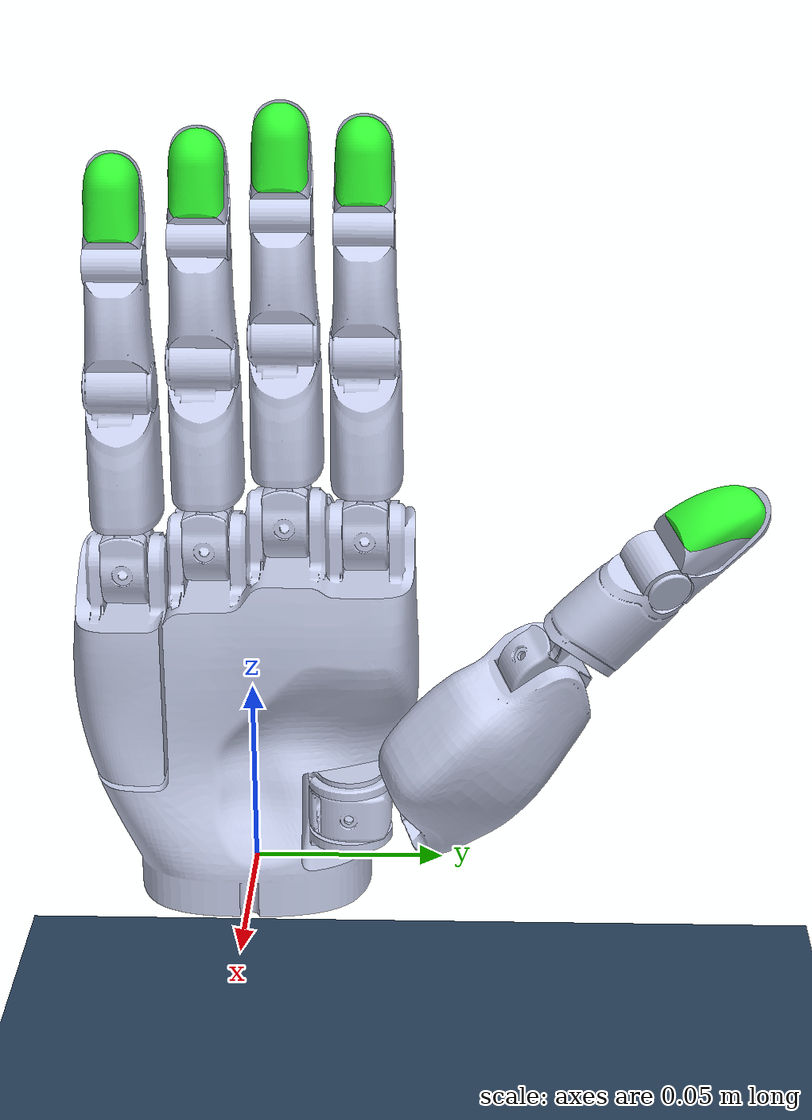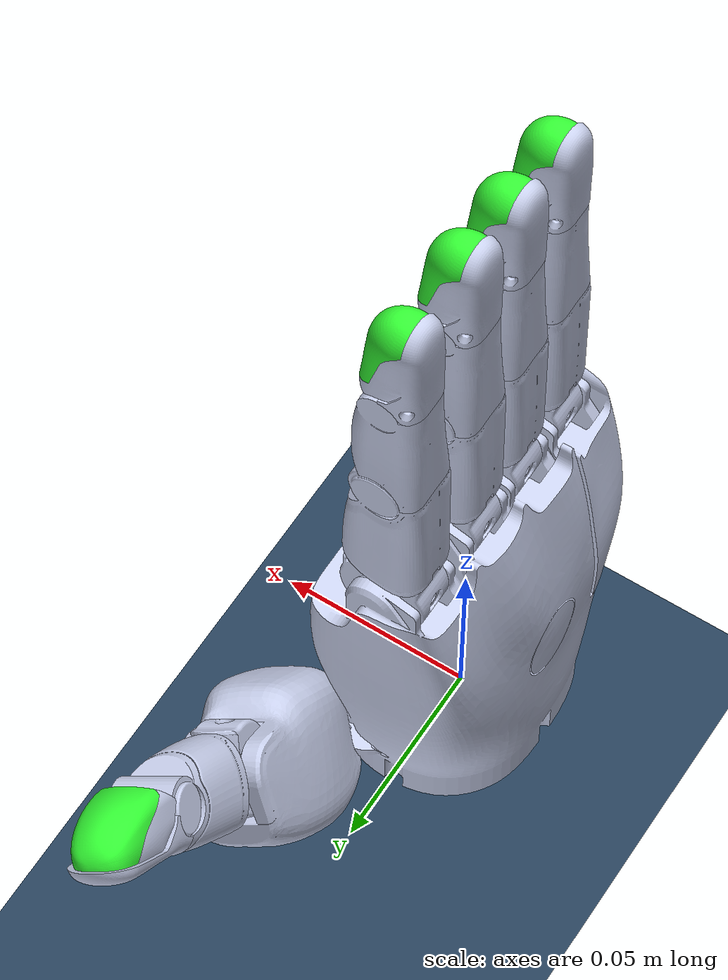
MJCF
<mujoco model="right_sharpa_wave scene">
  <include file="right_hand.xml"/>

  <visual>
    <headlight diffuse="0.6 0.6 0.6" ambient="0.3 0.3 0.3" specular="0 0 0"/>
    <rgba haze="0.15 0.25 0.35 1"/>
    <global azimuth="180" elevation="-10"/>
  </visual>

  <asset>
    <texture type="skybox" builtin="gradient" rgb1="0.3 0.5 0.7" rgb2="0 0 0" width="512" height="3072"/>
    <texture type="2d" name="groundplane" builtin="checker" mark="edge" rgb1="0.2 0.3 0.4" rgb2="0.1 0.2 0.3"
      markrgb="0.8 0.8 0.8" width="300" height="300"/>
    <material name="groundplane" texture="groundplane" texuniform="true" texrepeat="5 5" reflectance="0.2"/>
  </asset>

  <worldbody>
    <light pos="0 0 1.5" dir="0 0 -1" directional="true"/>
    <geom name="floor" pos="0 0 -0.05" size="0 0 0.05" type="plane" material="groundplane"/>
  </worldbody>
</mujoco>

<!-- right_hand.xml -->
<mujoco model="right_sharpa_wave">
  <compiler angle="radian" meshdir="assets/right/"/>

  <option impratio="10" integrator="implicitfast" cone="elliptic"/>

  <default>
    <default class="sharpa">
      <site size="0.0025 0.005 0.005" group="5" rgba="1 0 0 1"/>
      <general biastype="affine" biasprm="0 -1"/>
      <default class="visual">
        <geom type="mesh" contype="0" conaffinity="0" group="2" density="0" material="silver"/>
        <default class="elastomer_visual">
          <geom material="green"/>
        </default>
      </default>
      <default class="collision">
        <geom type="mesh" group="3" density="0" solref="0.01" rgba="0.2 0.6 0.2 0.25"/>
        <default class="elastomer_collision">
          <geom solref="0.06 0.9"/>
        </default>
      </default>
      <default class="CMC_joint">
        <joint actuatorfrcrange="-3.3 3.3" armature="0.00451" damping="4.2e-05" frictionloss="0.132"/>
      </default>
      <default class="PCMC_joint">
        <joint actuatorfrcrange="-0.5285 0.5285" armature="0.000136" damping="4.2e-05" frictionloss="0.012"/>
      </default>
      <default class="MCP_joint">
        <joint actuatorfrcrange="-1.864 1.864" armature="0.00129" damping="2.38e-05" frictionloss="0.07456"/>
      </default>
      <default class="PIP_joint">
        <joint actuatorfrcrange="-0.638 0.638" armature="0.000415" damping="4.06e-06" frictionloss="0.01276"/>
      </default>
      <default class="DIP_joint">
        <joint actuatorfrcrange="-0.189369 0.189369" armature="2.42e-05" damping="1.21e-06" frictionloss="0.00378738"/>
      </default>
    </default>
  </default>

  <asset>
    <material name="silver" rgba="0.79 0.82 0.93 1"/>
    <material name="green" rgba="0.2 1 0.2 1"/>
    <mesh name="right_hand_C_MC_visual" content_type="model/stl" file="right_hand_C_MC_visual.STL"/>
    <mesh name="right_hand_C_MC" content_type="model/stl" file="right_hand_C_MC.STL"/>
    <mesh name="right_thumb_CMC_VL" content_type="model/stl" file="right_thumb_CMC_VL.STL"/>
    <mesh name="right_thumb_MC_visual" content_type="model/stl" file="right_thumb_MC_visual.STL"/>
    <mesh name="right_thumb_MC" content_type="model/stl" file="right_thumb_MC.STL"/>
    <mesh name="right_thumb_MCP_VL_visual" content_type="model/stl" file="right_thumb_MCP_VL_visual.STL"/>
    <mesh name="right_thumb_PP_visual" content_type="model/stl" file="right_thumb_PP_visual.STL"/>
    <mesh name="right_thumb_PP" content_type="model/stl" file="right_thumb_PP.STL"/>
    <mesh name="DP_Visual_HB1_TH" content_type="model/stl" file="DP_Visual_HB1_TH.STL"/>
    <mesh name="DP_HB1_TH" content_type="model/stl" file="DP_HB1_TH.STL"/>
    <mesh name="elastomer_HB1_TH" content_type="model/stl" file="elastomer_HB1_TH.STL"/>
    <mesh name="right_MCP_VL_visual" content_type="model/stl" file="right_MCP_VL_visual.STL"/>
    <mesh name="MCP_VL" content_type="model/stl" file="MCP_VL.STL"/>
    <mesh name="right_PP_visual" content_type="model/stl" file="right_PP_visual.STL"/>
    <mesh name="right_PP" content_type="model/stl" file="right_PP.STL"/>
    <mesh name="right_MP_visual" content_type="model/stl" file="right_MP_visual.STL"/>
    <mesh name="right_MP" content_type="model/stl" file="right_MP.STL"/>
    <mesh name="DP_visual_HB1_4F" content_type="model/stl" file="DP_visual_HB1_4F.STL"/>
    <mesh name="DP_HB1_4F" content_type="model/stl" file="DP_HB1_4F.STL"/>
    <mesh name="elastomer_HB1_4F" content_type="model/stl" file="elastomer_HB1_4F.STL"/>
    <mesh name="right_pinky_MC_visual" content_type="model/stl" file="right_pinky_MC_visual.STL"/>
    <mesh name="right_pinky_MC" content_type="model/stl" file="right_pinky_MC.STL"/>
    <mesh name="palm000" content_type="model/obj" file="palm/palm000.obj"/>
    <mesh name="palm001" content_type="model/obj" file="palm/palm001.obj"/>
    <mesh name="palm002" content_type="model/obj" file="palm/palm002.obj"/>
    <mesh name="palm003" content_type="model/obj" file="palm/palm003.obj"/>
    <mesh name="palm004" content_type="model/obj" file="palm/palm004.obj"/>
    <mesh name="palm005" content_type="model/obj" file="palm/palm005.obj"/>
    <mesh name="palm006" content_type="model/obj" file="palm/palm006.obj"/>
    <mesh name="palm007" content_type="model/obj" file="palm/palm007.obj"/>
    <mesh name="palm008" content_type="model/obj" file="palm/palm008.obj"/>
    <mesh name="palm009" content_type="model/obj" file="palm/palm009.obj"/>
    <mesh name="palm010" content_type="model/obj" file="palm/palm010.obj"/>
    <mesh name="palm011" content_type="model/obj" file="palm/palm011.obj"/>
    <mesh name="palm012" content_type="model/obj" file="palm/palm012.obj"/>
    <mesh name="palm013" content_type="model/obj" file="palm/palm013.obj"/>
    <mesh name="palm014" content_type="model/obj" file="palm/palm014.obj"/>
    <mesh name="palm015" content_type="model/obj" file="palm/palm015.obj"/>
    <mesh name="palm016" content_type="model/obj" file="palm/palm016.obj"/>
    <mesh name="palm017" content_type="model/obj" file="palm/palm017.obj"/>
    <mesh name="palm018" content_type="model/obj" file="palm/palm018.obj"/>
    <mesh name="palm019" content_type="model/obj" file="palm/palm019.obj"/>
    <mesh name="palm020" content_type="model/obj" file="palm/palm020.obj"/>
    <mesh name="palm021" content_type="model/obj" file="palm/palm021.obj"/>
    <mesh name="palm022" content_type="model/obj" file="palm/palm022.obj"/>
    <mesh name="palm023" content_type="model/obj" file="palm/palm023.obj"/>
    <mesh name="palm024" content_type="model/obj" file="palm/palm024.obj"/>
    <mesh name="palm025" content_type="model/obj" file="palm/palm025.obj"/>
    <mesh name="palm026" content_type="model/obj" file="palm/palm026.obj"/>
    <mesh name="palm027" content_type="model/obj" file="palm/palm027.obj"/>
    <mesh name="palm028" content_type="model/obj" file="palm/palm028.obj"/>
    <mesh name="palm029" content_type="model/obj" file="palm/palm029.obj"/>
    <mesh name="palm030" content_type="model/obj" file="palm/palm030.obj"/>
    <mesh name="palm031" content_type="model/obj" file="palm/palm031.obj"/>
  </asset>

  <worldbody>
    <body name="right_hand_C_MC" childclass="sharpa">
      <geom name="right_hand_C_MC_visual" class="visual" mass="0.72045" mesh="right_hand_C_MC_visual"/>
      <geom name="palm000_collision" class="collision" mesh="palm000"/>
      <geom name="palm001_collision" class="collision" mesh="palm001"/>
      <geom name="palm002_collision" class="collision" mesh="palm002"/>
      <geom name="palm003_collision" class="collision" mesh="palm003"/>
      <geom name="palm004_collision" class="collision" mesh="palm004"/>
      <geom name="palm005_collision" class="collision" mesh="palm005"/>
      <geom name="palm006_collision" class="collision" mesh="palm006"/>
      <geom name="palm007_collision" class="collision" mesh="palm007"/>
      <geom name="palm008_collision" class="collision" mesh="palm008"/>
      <geom name="palm009_collision" class="collision" mesh="palm009"/>
      <geom name="palm010_collision" class="collision" mesh="palm010"/>
      <geom name="palm011_collision" class="collision" mesh="palm011"/>
      <geom name="palm012_collision" class="collision" mesh="palm012"/>
      <geom name="palm013_collision" class="collision" mesh="palm013"/>
      <geom name="palm014_collision" class="collision" mesh="palm014"/>
      <geom name="palm015_collision" class="collision" mesh="palm015"/>
      <geom name="palm016_collision" class="collision" mesh="palm016"/>
      <geom name="palm017_collision" class="collision" mesh="palm017"/>
      <geom name="palm018_collision" class="collision" mesh="palm018"/>
      <geom name="palm019_collision" class="collision" mesh="palm019"/>
      <geom name="palm020_collision" class="collision" mesh="palm020"/>
      <geom name="palm021_collision" class="collision" mesh="palm021"/>
      <geom name="palm022_collision" class="collision" mesh="palm022"/>
      <geom name="palm023_collision" class="collision" mesh="palm023"/>
      <geom name="palm024_collision" class="collision" mesh="palm024"/>
      <geom name="palm025_collision" class="collision" mesh="palm025"/>
      <geom name="palm026_collision" class="collision" mesh="palm026"/>
      <geom name="palm027_collision" class="collision" mesh="palm027"/>
      <geom name="palm028_collision" class="collision" mesh="palm028"/>
      <geom name="palm029_collision" class="collision" mesh="palm029"/>
      <geom name="palm030_collision" class="collision" mesh="palm030"/>
      <geom name="palm031_collision" class="collision" mesh="palm031"/>
      <site name="wrist_site" pos="0 0 0"/>
      <body name="right_thumb_CMC_VL" pos="0.01 0.026 0.0214" quat="0.707105 0 0 0.707108">
        <inertial pos="-0.00065 0.0002 0" quat="0.557664 -0.434754 -0.557664 -0.434754" mass="0.0025"
          diaginertia="2.6e-07 2.12661e-07 1.34339e-07"/>
        <joint name="right_thumb_CMC_FE" class="CMC_joint" pos="0 0 0" axis="0 0 -1" range="-0.1745 1.9199"/>
        <geom class="visual" mesh="right_thumb_CMC_VL"/>
        <geom name="right_thumb_CMC_VL_fit" size="0.0120419 0.00625" pos="0.000957197 -0.000412167 1.20218e-10"
          type="cylinder" group="3" rgba="0.2 0.6 0.2 0.35"/>
        <body name="right_thumb_MC" pos="0 0.005 0" quat="0.65328 -0.653282 -0.270598 -0.270599">
          <inertial pos="0.03643 0.01024 -0.00517" quat="-0.154462 0.683763 -0.151259 0.696943" mass="0.13587"
            diaginertia="4.69153e-05 4.29066e-05 1.92101e-05"/>
          <joint name="right_thumb_CMC_AA" class="CMC_joint" pos="0 0 0" axis="0 0 -1" range="-0.3491 0.3491"/>
          <geom class="visual" mesh="right_thumb_MC_visual"/>
          <geom name="right_thumb_MC_fit" size="0.0207081 0.0169273" pos="0.0397656 0.0106861 -0.0110947"
            quat="0.707107 0 0.707107 0" type="capsule" group="3" rgba="0.2 0.6 0.2 0.35"/>
          <body name="right_thumb_MCP_VL" pos="0.065 0.006 -0.010392" quat="0.965926 0.25882 0 0">
            <joint name="right_thumb_MCP_FE" class="MCP_joint" pos="0 0 0" axis="0 0 -1" range="-0.5236 1.3963"/>
            <geom class="visual" mass="8e-05" mesh="right_thumb_MCP_VL_visual"/>
            <body name="right_thumb_PP" quat="0.707105 -0.707108 0 0">
              <inertial pos="0.021256 0.00095 0.00092" quat="0.511613 -0.44358 0.554609 -0.483631" mass="0.03078"
                diaginertia="6.08344e-06 5.91207e-06 1.22148e-06"/>
              <joint name="right_thumb_MCP_AA" class="MCP_joint" pos="0 0 0" axis="0 0 -1" range="-0.3491 0.3491"/>
              <geom class="visual" mesh="right_thumb_PP_visual"/>
              <geom name="right_thumb_PP_fit" size="0.011707 0.0137066" pos="0.0237179 8.06477e-10 0.0012143"
                quat="0.707107 0 0.707107 0" type="capsule" group="3" rgba="0.2 0.6 0.2 0.35"/>
              <body name="right_thumb_DP" pos="0.039 0 0" quat="0.707105 0.707108 0 0">
                <inertial pos="0.00823663 0.00178196 -0.00099988" quat="0.255956 0.713878 0.187417 0.624291"
                  mass="0.00998" diaginertia="1.09014e-06 1.041e-06 2.95174e-07"/>
                <joint name="right_thumb_IP" class="PIP_joint" pos="0 0 0" axis="0 0 -1" range="0 1.7453"/>
                <geom class="visual" mesh="DP_Visual_HB1_TH"/>
                <geom class="visual" quat="-0.5 0.5 0.5 0.5" material="green" mesh="elastomer_HB1_TH"/>
                <geom name="right_thumb_fingertip_collision" class="elastomer_collision" size="0.00943065 0.00677499"
                  pos="0.0163733 0.00176519 2.7474e-08" quat="0.508797 -0.508797 0.491045 -0.491045" type="capsule"/>
                <site name="right_thumb_fingertip" pos="0.0276109 0 0" quat="-0.5 0.5 -0.5 0.5"/>
              </body>
            </body>
          </body>
        </body>
      </body>
      <body name="right_index_MCP_VL" pos="0.001 0.0303 0.0959" quat="0.499998 0.500002 -0.5 0.5">
        <inertial pos="-0.0092 0.0013 0" quat="-0.479506 0.519686 0.479506 0.519686" mass="0.00221"
          diaginertia="2.23e-07 1.77435e-07 1.09965e-07"/>
        <joint name="right_index_MCP_FE" class="MCP_joint" pos="0 0 0" axis="0 0 -1" range="-0.174533 1.5708"/>
        <geom class="visual" mesh="right_MCP_VL_visual"/>
        <geom name="right_index_MCP_VL_fit" size="0.0125535 0.0057" pos="0.00165159 -0.00045 1.0897e-10" type="cylinder"
          group="3" rgba="0.2 0.6 0.2 0.35"/>
        <body name="right_index_PP" quat="0.707105 -0.707108 0 0">
          <inertial pos="0.027 0.00055 -0.00068" quat="0.502719 -0.479286 0.512565 -0.504813" mass="0.04741"
            diaginertia="1.14061e-05 1.10467e-05 2.15425e-06"/>
          <joint name="right_index_MCP_AA" class="MCP_joint" pos="0 0 0" axis="0 0 -1" range="-0.3491 0.3491"/>
          <geom class="visual" mesh="right_PP_visual"/>
          <geom name="right_index_PP_fit" size="0.0104766 0.0172474" pos="0.0305371 -8.5591e-06 0.000140714"
            quat="0.707107 0 0.707107 0" type="capsule" group="3" rgba="0.2 0.6 0.2 0.35"/>
          <body name="right_index_MP" pos="0.047 0 0" quat="0.707105 0.707108 0 0">
            <inertial pos="0.01212 0.00116 0.00058" quat="0.0266408 0.732558 0.0189273 0.67992" mass="0.01824"
              diaginertia="2.00683e-06 1.9229e-06 5.68878e-07"/>
            <joint name="right_index_PIP" class="PIP_joint" pos="0 0 0" axis="0 0 -1" range="0 1.7453"/>
            <geom class="visual" mesh="right_MP_visual"/>
            <geom name="right_index_MP_fit" size="0.0104174 0.0147236" pos="0.0147146 0.00118535 -4.70523e-07"
              quat="0.707107 0 0.707107 0" type="capsule" group="3" rgba="0.2 0.6 0.2 0.35"/>
            <body name="right_index_DP" pos="0.0315 0 0">
              <inertial pos="0.0124856 0.00257344 -0.000107634" quat="0.0491898 0.71664 0.0584115 0.69325"
                mass="0.00465" diaginertia="3.15145e-07 3.09574e-07 1.34852e-07"/>
              <joint name="right_index_DIP" class="DIP_joint" pos="0 0 0" axis="0 0 -1" range="0 1.3963"/>
              <geom class="visual" mesh="DP_visual_HB1_4F"/>
              <geom class="visual" quat="-0.5 0.5 0.5 0.5" material="green" mesh="elastomer_HB1_4F"/>
              <geom name="right_index_fingertip_collision" class="elastomer_collision" size="0.00806303 0.00535098"
                pos="0.0139214 0.00086892 -1.32248e-06" quat="0.0228873 0.706736 -0.0228873 0.706736" type="capsule"/>
              <site name="right_index_fingertip" pos="0.0260093 0 0" quat="-0.5 0.5 -0.5 0.5"/>
            </body>
          </body>
        </body>
      </body>
      <body name="right_middle_MCP_VL" pos="0 0.01 0.0989" quat="0.499998 0.500002 -0.5 0.5">
        <inertial pos="-0.0092 0.0013 0" quat="-0.479506 0.519686 0.479506 0.519686" mass="0.00221"
          diaginertia="2.23e-07 1.77435e-07 1.09965e-07"/>
        <joint name="right_middle_MCP_FE" class="MCP_joint" pos="0 0 0" axis="0 0 -1" range="-0.174533 1.5708"/>
        <geom class="visual" mesh="right_MCP_VL_visual"/>
        <geom name="right_middle_MCP_VL_fit" size="0.0125535 0.0057" pos="0.00165159 -0.00045 1.0897e-10"
          type="cylinder" group="3" rgba="0.2 0.6 0.2 0.35"/>
        <body name="right_middle_PP" quat="0.707105 -0.707108 0 0">
          <inertial pos="0.027 0.00055 -0.00068" quat="0.502719 -0.479286 0.512565 -0.504813" mass="0.04741"
            diaginertia="1.14061e-05 1.10467e-05 2.15425e-06"/>
          <joint name="right_middle_MCP_AA" class="MCP_joint" pos="0 0 0" axis="0 0 -1" range="-0.3491 0.3491"/>
          <geom class="visual" mesh="right_PP_visual"/>
          <geom name="right_middle_PP_fit" size="0.00934798 0.0172474" pos="0.0305371 -8.5591e-06 0.000140714"
            quat="0.707107 0 0.707107 0" type="capsule" group="3" rgba="0.2 0.6 0.2 0.35"/>
          <body name="right_middle_MP" pos="0.047 0 0" quat="0.707105 0.707108 0 0">
            <inertial pos="0.01212 0.00116 0.00058" quat="0.0266408 0.732558 0.0189273 0.67992" mass="0.01824"
              diaginertia="2.00683e-06 1.9229e-06 5.68878e-07"/>
            <joint name="right_middle_PIP" class="PIP_joint" pos="0 0 0" axis="0 0 -1" range="0 1.7453"/>
            <geom class="visual" mesh="right_MP_visual"/>
            <geom name="right_middle_MP_fit" size="0.00940724 0.0147236" pos="0.0147146 0.00118535 -4.70523e-07"
              quat="0.707107 0 0.707107 0" type="capsule" group="3" rgba="0.2 0.6 0.2 0.35"/>
            <body name="right_middle_DP" pos="0.0315 0 0">
              <inertial pos="0.0124856 0.00257344 -0.000107634" quat="0.0491898 0.71664 0.0584115 0.69325"
                mass="0.00465" diaginertia="3.15145e-07 3.09574e-07 1.34852e-07"/>
              <joint name="right_middle_DIP" class="DIP_joint" pos="0 0 0" axis="0 0 -1" range="0 1.3963"/>
              <geom class="visual" mesh="DP_visual_HB1_4F"/>
              <geom class="visual" quat="-0.5 0.5 0.5 0.5" material="green" mesh="elastomer_HB1_4F"/>
              <geom name="right_middle_fingertip_collision" class="elastomer_collision" size="0.00806303 0.00535098"
                pos="0.0139214 0.00086892 -1.32248e-06" quat="0.0228873 0.706736 -0.0228873 0.706736" type="capsule"/>
              <site name="right_middle_fingertip" pos="0.0260093 0 0" quat="-0.5 0.5 -0.5 0.5"/>
            </body>
          </body>
        </body>
      </body>
      <body name="right_ring_MCP_VL" pos="0.0015 -0.0103 0.0929" quat="0.499998 0.500002 -0.5 0.5">
        <inertial pos="-0.0092 0.0013 0" quat="-0.479506 0.519686 0.479506 0.519686" mass="0.00221"
          diaginertia="2.23e-07 1.77435e-07 1.09965e-07"/>
        <joint name="right_ring_MCP_FE" class="MCP_joint" pos="0 0 0" axis="0 0 -1" range="-0.174533 1.5708"/>
        <geom class="visual" mesh="right_MCP_VL_visual"/>
        <geom name="right_ring_MCP_VL_fit" size="0.0125535 0.0057" pos="0.00165159 -0.00045 1.0897e-10" type="cylinder"
          group="3" rgba="0.2 0.6 0.2 0.35"/>
        <body name="right_ring_PP" quat="0.707105 -0.707108 0 0">
          <inertial pos="0.027 0.00055 -0.00068" quat="0.502719 -0.479286 0.512565 -0.504813" mass="0.04741"
            diaginertia="1.14061e-05 1.10467e-05 2.15425e-06"/>
          <joint name="right_ring_MCP_AA" class="MCP_joint" pos="0 0 0" axis="0 0 -1" range="-0.3491 0.3491"/>
          <geom class="visual" mesh="right_PP_visual"/>
          <geom name="right_ring_PP_fit" size="0.00970157 0.0172474" pos="0.0305371 -8.5591e-06 0.000140714"
            quat="0.707107 0 0.707107 0" type="capsule" group="3" rgba="0.2 0.6 0.2 0.35"/>
          <body name="right_ring_MP" pos="0.047 0 0" quat="0.707105 0.707108 0 0">
            <inertial pos="0.01212 0.00116 0.00058" quat="0.0266408 0.732558 0.0189273 0.67992" mass="0.01824"
              diaginertia="2.00683e-06 1.9229e-06 5.68878e-07"/>
            <joint name="right_ring_PIP" class="PIP_joint" pos="0 0 0" axis="0 0 -1" range="0 1.7453"/>
            <geom class="visual" mesh="right_MP_visual"/>
            <geom name="right_ring_MP_fit" size="0.0104481 0.0147236" pos="0.0147146 0.00118535 -4.70523e-07"
              quat="0.707107 0 0.707107 0" type="capsule" group="3" rgba="0.2 0.6 0.2 0.35"/>
            <body name="right_ring_DP" pos="0.0315 0 0">
              <inertial pos="0.0124856 0.00257344 -0.000107634" quat="0.0491898 0.71664 0.0584115 0.69325"
                mass="0.00465" diaginertia="3.15145e-07 3.09574e-07 1.34852e-07"/>
              <joint name="right_ring_DIP" class="DIP_joint" pos="0 0 0" axis="0 0 -1" range="0 1.3963"/>
              <geom class="visual" mesh="DP_visual_HB1_4F"/>
              <geom class="visual" quat="-0.499998 0.5 0.5 0.500002" material="green" mesh="elastomer_HB1_4F"/>
              <geom name="right_ring_fingertip_collision" class="elastomer_collision" size="0.00806303 0.00535098"
                pos="0.0139214 0.00086892 -1.32248e-06" quat="0.0228873 0.706736 -0.0228873 0.706736" type="capsule"/>
              <site name="right_ring_fingertip" pos="0.0260093 -1.04037e-07 1.04037e-07"
                quat="-0.5 0.499998 -0.5 0.500002"/>
            </body>
          </body>
        </body>
      </body>
      <body name="right_pinky_MC" pos="0.01136 -0.0263 0.0869" quat="-1.34924e-11 3.67321e-06 1 -3.67321e-06">
        <joint name="right_pinky_CMC" class="PCMC_joint" pos="0 0 0" axis="0 0 -1" range="0 0.2618"/>
        <geom class="visual" mass="0.12541" mesh="right_pinky_MC_visual"/>
        <geom class="collision" mesh="right_pinky_MC"/>
        <body name="right_pinky_MCP_VL" pos="0.00836 -0.0048 0" quat="-0.499998 -0.5 -0.5 0.500002">
          <inertial pos="-0.0092 0.0013 0" quat="-0.479506 0.519686 0.479506 0.519686" mass="0.00221"
            diaginertia="2.23e-07 1.77435e-07 1.09965e-07"/>
          <joint name="right_pinky_MCP_FE" class="MCP_joint" pos="0 0 0" axis="0 0 -1" range="-0.174533 1.5708"/>
          <geom class="visual" mesh="right_MCP_VL_visual"/>
          <geom name="right_pinky_MCP_VL_fit" size="0.0125535 0.0057" pos="0.00165159 -0.00045 1.0897e-10"
            type="cylinder" group="3" rgba="0.2 0.6 0.2 0.35"/>
          <body name="right_pinky_PP" quat="0.707105 -0.707108 0 0">
            <inertial pos="0.027 0.00055 -0.00068" quat="0.502719 -0.479286 0.512565 -0.504813" mass="0.04741"
              diaginertia="1.14061e-05 1.10467e-05 2.15425e-06"/>
            <joint name="right_pinky_MCP_AA" class="MCP_joint" pos="0 0 0" axis="0 0 -1" range="-0.3491 0.3491"/>
            <geom class="visual" mesh="right_PP_visual"/>
            <geom name="right_pinky_PP_fit" size="0.0106522 0.0172474" pos="0.0305371 -8.5591e-06 0.000140714"
              quat="0.707107 0 0.707107 0" type="capsule" group="3" rgba="0.2 0.6 0.2 0.35"/>
            <body name="right_pinky_MP" pos="0.047 0 0" quat="0.707105 0.707108 0 0">
              <inertial pos="0.01212 0.00116 0.00058" quat="0.0266408 0.732558 0.0189273 0.67992" mass="0.01824"
                diaginertia="2.00683e-06 1.9229e-06 5.68878e-07"/>
              <joint name="right_pinky_PIP" class="PIP_joint" pos="0 0 0" axis="0 0 -1" range="0 1.7453"/>
              <geom class="visual" mesh="right_MP_visual"/>
              <geom name="right_pinky_MP_fit" size="0.00990499 0.0147236" pos="0.0147146 0.00118535 -4.70523e-07"
                quat="0.707107 0 0.707107 0" type="capsule" group="3" rgba="0.2 0.6 0.2 0.35"/>
              <body name="right_pinky_DP" pos="0.0315 0 0">
                <inertial pos="0.0124856 0.00257344 -0.000107634" quat="0.0491898 0.71664 0.0584115 0.69325"
                  mass="0.00465" diaginertia="3.15145e-07 3.09574e-07 1.34852e-07"/>
                <joint name="right_pinky_DIP" class="DIP_joint" pos="0 0 0" axis="0 0 -1" range="0 1.3963"/>
                <geom class="visual" mesh="DP_visual_HB1_4F"/>
                <geom class="visual" quat="-0.5 0.5 0.5 0.5" material="green" mesh="elastomer_HB1_4F"/>
                <geom name="right_pinky_fingertip_collision" class="elastomer_collision" size="0.00806303 0.00535098"
                  pos="0.0139214 0.00086892 -1.32248e-06" quat="0.0228873 0.706736 -0.0228873 0.706736" type="capsule"/>
                <site name="right_pinky_fingertip" pos="0.0260093 0 0" quat="-0.5 0.5 -0.5 0.5"/>
              </body>
            </body>
          </body>
        </body>
      </body>
    </body>
  </worldbody>

  <contact>
    <exclude body1="right_hand_C_MC" body2="right_thumb_CMC_VL"/>
    <exclude body1="right_hand_C_MC" body2="right_thumb_MC"/>
    <exclude body1="right_hand_C_MC" body2="right_index_MCP_VL"/>
    <exclude body1="right_hand_C_MC" body2="right_middle_MCP_VL"/>
    <exclude body1="right_hand_C_MC" body2="right_ring_MCP_VL"/>
    <exclude body1="right_hand_C_MC" body2="right_pinky_MC"/>
    <exclude body1="right_hand_C_MC" body2="right_pinky_MCP_VL"/>
    <exclude body1="right_thumb_CMC_VL" body2="right_thumb_MC"/>
    <exclude body1="right_thumb_MC" body2="right_thumb_PP"/>
    <exclude body1="right_thumb_PP" body2="right_thumb_DP"/>
    <exclude body1="right_index_MCP_VL" body2="right_index_PP"/>
    <exclude body1="right_index_MCP_VL" body2="right_middle_MCP_VL"/>
    <exclude body1="right_index_PP" body2="right_index_MP"/>
    <exclude body1="right_index_MP" body2="right_index_DP"/>
    <exclude body1="right_middle_MCP_VL" body2="right_middle_PP"/>
    <exclude body1="right_middle_MCP_VL" body2="right_ring_MCP_VL"/>
    <exclude body1="right_middle_PP" body2="right_middle_MP"/>
    <exclude body1="right_middle_MP" body2="right_middle_DP"/>
    <exclude body1="right_ring_MCP_VL" body2="right_ring_PP"/>
    <exclude body1="right_ring_MCP_VL" body2="right_pinky_MCP_VL"/>
    <exclude body1="right_ring_PP" body2="right_ring_MP"/>
    <exclude body1="right_ring_MP" body2="right_ring_DP"/>
    <exclude body1="right_pinky_MC" body2="right_pinky_MCP_VL"/>
    <exclude body1="right_pinky_MCP_VL" body2="right_pinky_PP"/>
    <exclude body1="right_pinky_PP" body2="right_pinky_MP"/>
    <exclude body1="right_pinky_MP" body2="right_pinky_DP"/>
  </contact>

  <actuator>
    <general name="right_thumb_CMC_FE" class="sharpa" joint="right_thumb_CMC_FE" ctrlrange="-0.1745 1.9199"
      gainprm="6.95" biasprm="0 -6.95 0.9"/>
    <general name="right_thumb_CMC_AA" class="sharpa" joint="right_thumb_CMC_AA" ctrlrange="-0.3491 0.3491"
      gainprm="13.2" biasprm="0 -13.2 0.9"/>
    <general name="right_thumb_MCP_FE" class="sharpa" joint="right_thumb_MCP_FE" ctrlrange="-0.5236 1.3963"
      gainprm="4.76" biasprm="0 -4.76 0.9"/>
    <general name="right_thumb_MCP_AA" class="sharpa" joint="right_thumb_MCP_AA" ctrlrange="-0.3491 0.3491"
      gainprm="6.62" biasprm="0 -6.62 0.9"/>
    <general name="right_thumb_IP" class="sharpa" joint="right_thumb_IP" ctrlrange="0 1.7453" gainprm="0.9"
      biasprm="0 -0.9 0.9"/>
    <general name="right_index_MCP_FE" class="sharpa" joint="right_index_MCP_FE" ctrlrange="-0.174533 1.5708"
      gainprm="4.76" biasprm="0 -4.76 0.9"/>
    <general name="right_index_MCP_AA" class="sharpa" joint="right_index_MCP_AA" ctrlrange="-0.3491 0.3491"
      gainprm="6.62" biasprm="0 -6.62 0.9"/>
    <general name="right_index_PIP" class="sharpa" joint="right_index_PIP" ctrlrange="0 1.7453" gainprm="0.9"
      biasprm="0 -0.9 0.9"/>
    <general name="right_index_DIP" class="sharpa" joint="right_index_DIP" ctrlrange="0 1.3963" gainprm="0.9"
      biasprm="0 -0.9 0.9"/>
    <general name="right_middle_MCP_FE" class="sharpa" joint="right_middle_MCP_FE" ctrlrange="-0.174533 1.5708"
      gainprm="4.76" biasprm="0 -4.76 0.9"/>
    <general name="right_middle_MCP_AA" class="sharpa" joint="right_middle_MCP_AA" ctrlrange="-0.3491 0.3491"
      gainprm="6.62" biasprm="0 -6.62 0.9"/>
    <general name="right_middle_PIP" class="sharpa" joint="right_middle_PIP" ctrlrange="0 1.7453" gainprm="0.9"
      biasprm="0 -0.9 0.9"/>
    <general name="right_middle_DIP" class="sharpa" joint="right_middle_DIP" ctrlrange="0 1.3963" gainprm="0.9"
      biasprm="0 -0.9 0.9"/>
    <general name="right_ring_MCP_FE" class="sharpa" joint="right_ring_MCP_FE" ctrlrange="-0.174533 1.5708"
      gainprm="4.76" biasprm="0 -4.76 0.9"/>
    <general name="right_ring_MCP_AA" class="sharpa" joint="right_ring_MCP_AA" ctrlrange="-0.3491 0.3491" gainprm="6.62"
      biasprm="0 -6.62 0.9"/>
    <general name="right_ring_PIP" class="sharpa" joint="right_ring_PIP" ctrlrange="0 1.7453" gainprm="0.9"
      biasprm="0 -0.9 0.9"/>
    <general name="right_ring_DIP" class="sharpa" joint="right_ring_DIP" ctrlrange="0 1.3963" gainprm="0.9"
      biasprm="0 -0.9 0.9"/>
    <general name="right_pinky_CMC" class="sharpa" joint="right_pinky_CMC" ctrlrange="0 0.2618" gainprm="1.38"
      biasprm="0 -1.38 0.9"/>
    <general name="right_pinky_MCP_FE" class="sharpa" joint="right_pinky_MCP_FE" ctrlrange="-0.174533 1.5708"
      gainprm="4.76" biasprm="0 -4.76 0.9"/>
    <general name="right_pinky_MCP_AA" class="sharpa" joint="right_pinky_MCP_AA" ctrlrange="-0.3491 0.3491"
      gainprm="6.62" biasprm="0 -6.62 0.9"/>
    <general name="right_pinky_PIP" class="sharpa" joint="right_pinky_PIP" ctrlrange="0 1.7453" gainprm="0.9"
      biasprm="0 -0.9 0.9"/>
    <general name="right_pinky_DIP" class="sharpa" joint="right_pinky_DIP" ctrlrange="0 1.3963" gainprm="0.9"
      biasprm="0 -0.9 0.9"/>
  </actuator>
</mujoco>
